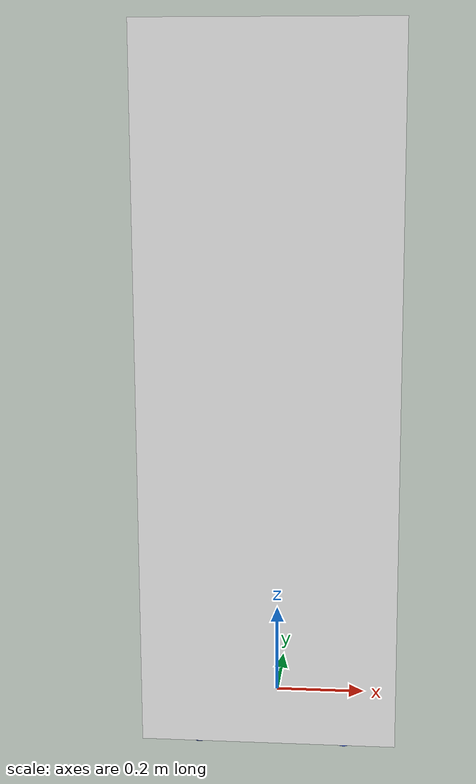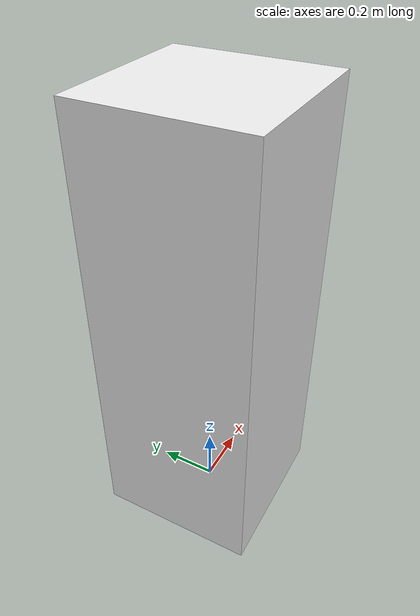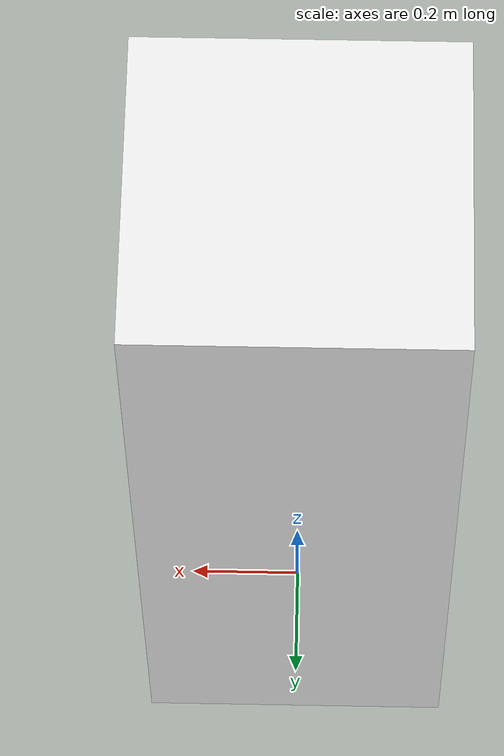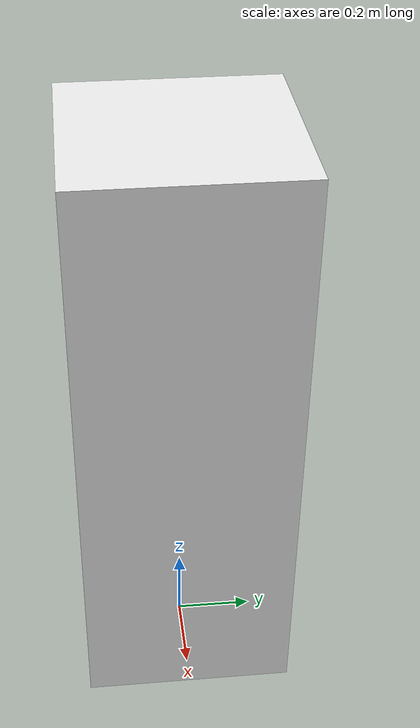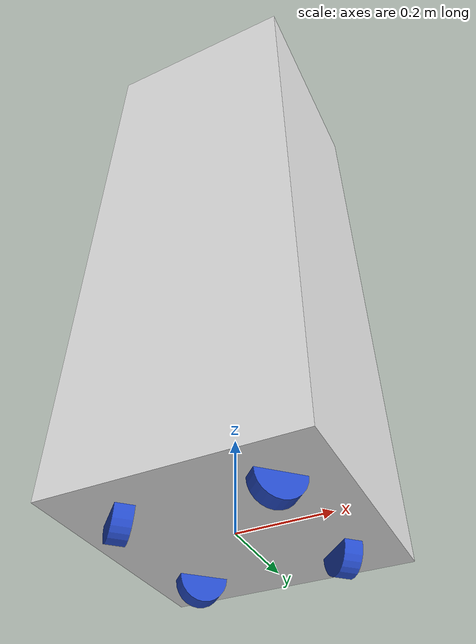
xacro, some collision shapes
<?xml version="1.0"?>
<robot xmlns:xacro="http://www.ros.org/wiki/xacro">

    <xacro:include filename="inertial_macros.xacro"/>

    <!-- links and joints go here -->

    <!-- The rest of the robot can be described from base_link, which is the centre point of the four driving wheels -->
    <link name="base_link">
    </link>

    <!-- chassis joint goes here. It connects chassis to base_link via fixed joint -->
    <joint name="chassis_joint" type="fixed">
        <parent link="base_link"/>
        <child link="chassis"/>
        <origin xyz="0 0 0"/>
    </joint>
    <!-- chassis description goes here. It describes the chassis of robocock which is a 54cm x 54cm x 150cm box -->
    <link name="chassis">
        <visual>
            <!-- by default, the origin is centred around the link origin, so offset it by half the height -->
            <geometry>
                <mesh filename="package://robocock/meshes/frame_ultra_low_poly.stl"/>
            </geometry>
            <material name="white"/>
        </visual>
        <!-- physics model -->
        <collision>
            <origin xyz="0 0 0.75" rpy="0 0 0"/>
            <geometry>
                <box size="0.54 0.54 1.5"/>
            </geometry>
        </collision>
        <xacro:inertial_box mass="10" x="0.54" y="0.54" z="1.5">
            <origin xyz="0 0 0.75" rpy="0 0 0"/>
        </xacro:inertial_box>
    </link>
    <!-- gazebo specific description -->
    <gazebo reference="chassis">
        <material>Gazebo/White</material>
    </gazebo>>

    <!-- FRONT LEFT WHEEL AKA wheel_1 -->
    <joint name="wheel_1_joint" type="continuous">
        <parent link="base_link"/>
        <child link="wheel_1"/>
        <origin xyz="0.1575 0.1575 0" rpy="-${pi/2} 0 -${pi/4}"/>
        <axis xyz="0 0 1"/>
    </joint>

    <link name="wheel_1">
        <visual>
            <geometry>
                <cylinder length="0.038" radius="0.05" />
            </geometry>
            <material name="blue"/>
        </visual>
        <collision>
            <geometry>
                <cylinder length="0.038" radius="0.05" />
            </geometry>
        </collision>
        <xacro:inertial_cylinder mass="0.2" length="0.038" radius="0.05">
            <origin xyz="0 0 0" rpy="0 0 0"/>
        </xacro:inertial_cylinder>
    </link>

    <gazebo reference="wheel_1">
        <material>Gazebo/Blue</material>
        <mu1 value="0.2"/>
        <mu2 value="1.5"/>
        <kp value="10000000.0" />
        <kd value="10000.0" />
        <fdir1 value="0 0 1"/>
        <maxContacts value= "1"/>
    </gazebo>

    <!-- FRONT RIGHT WHEEL AKA wheel_2 -->
    <joint name="wheel_2_joint" type="continuous">
        <parent link="base_link"/>
        <child link="wheel_2"/>
        <origin xyz="0.1575 -0.1575 0" rpy="${pi/2} 0 ${pi/4}"/>
        <axis xyz="0 0 -1"/>
    </joint>

    <link name="wheel_2">
        <visual>
            <geometry>
                <cylinder length="0.038" radius="0.05" />
            </geometry>
            <material name="blue"/>
        </visual>
        <collision>
            <geometry>
                <cylinder length="0.038" radius="0.05" />
            </geometry>
        </collision>
        <xacro:inertial_cylinder mass="0.2" length="0.038" radius="0.05">
            <origin xyz="0 0 0" rpy="0 0 0"/>
        </xacro:inertial_cylinder>
    </link>

    <gazebo reference="wheel_2">
        <material>Gazebo/Blue</material>
        <mu1 value="0.2"/>
        <mu2 value="1.5"/>
        <kp value="10000000.0" />
        <kd value="10000.0" />
        <fdir1 value="0 0 1"/>
        <maxContacts value= "1"/>
    </gazebo>

    <!-- REAR LEFT WHEEL AKA wheel_3 -->
    <joint name="wheel_3_joint" type="continuous">
        <parent link="base_link"/>
        <child link="wheel_3"/>
        <origin xyz="-0.1575 0.1575 0" rpy="-${pi/2} 0 ${pi/4}"/>
        <axis xyz="0 0 1"/>
    </joint>

    <link name="wheel_3">
        <visual>
            <geometry>
                <cylinder length="0.038" radius="0.05" />
            </geometry>
            <material name="blue"/>
        </visual>
        <collision>
            <geometry>
                <cylinder length="0.038" radius="0.05" />
            </geometry>
        </collision>
        <xacro:inertial_cylinder mass="0.2" length="0.038" radius="0.05">
            <origin xyz="0 0 0" rpy="0 0 0"/>
        </xacro:inertial_cylinder>
    </link>

    <gazebo reference="wheel_3">
        <material>Gazebo/Blue</material>
        <mu1 value="0.2"/>
        <mu2 value="1.5"/>
        <kp value="10000000.0" />
        <kd value="10000.0" />
        <fdir1 value="0 0 1"/>
        <maxContacts value= "1"/>
    </gazebo>

    <!-- REAR RIGHT WHEEL AKA wheel_4 -->
    <joint name="wheel_4_joint" type="continuous">
        <parent link="base_link"/>
        <child link="wheel_4"/>
        <origin xyz="-0.1575 -0.1575 0" rpy="${pi/2} 0 -${pi/4}"/>
        <axis xyz="0 0 -1"/>
    </joint>

    <link name="wheel_4">
        <visual>
            <geometry>
                <cylinder length="0.038" radius="0.05" />
            </geometry>
            <material name="blue"/>
        </visual>
        <collision>
            <geometry>
                <cylinder length="0.038" radius="0.05" />
            </geometry>
        </collision>
        <xacro:inertial_cylinder mass="0.2" length="0.038" radius="0.05">
            <origin xyz="0 0 0" rpy="0 0 0"/>
        </xacro:inertial_cylinder>
    </link>

    <gazebo reference="wheel_4">
        <material>Gazebo/Blue</material>
        <mu1 value="0.2"/>
        <mu2 value="1.5"/>
        <kp value="10000000.0" />
        <kd value="10000.0" />
        <fdir1 value="0 0 1"/>
        <maxContacts value= "1"/>
    </gazebo>

    <!-- Make Gazebo publish joint states -->
    <gazebo>
        <plugin name="gazebo_row_joint_state_publisher"
            filename="libgazebo_ros_joint_state_publisher.so">
            <update_rate>20</update_rate>
            <joint_name>wheel_1_joint</joint_name>
            <joint_name>wheel_2_joint</joint_name>
            <joint_name>wheel_3_joint</joint_name>
            <joint_name>wheel_4_joint</joint_name>
        </plugin>
    </gazebo>

</robot>
